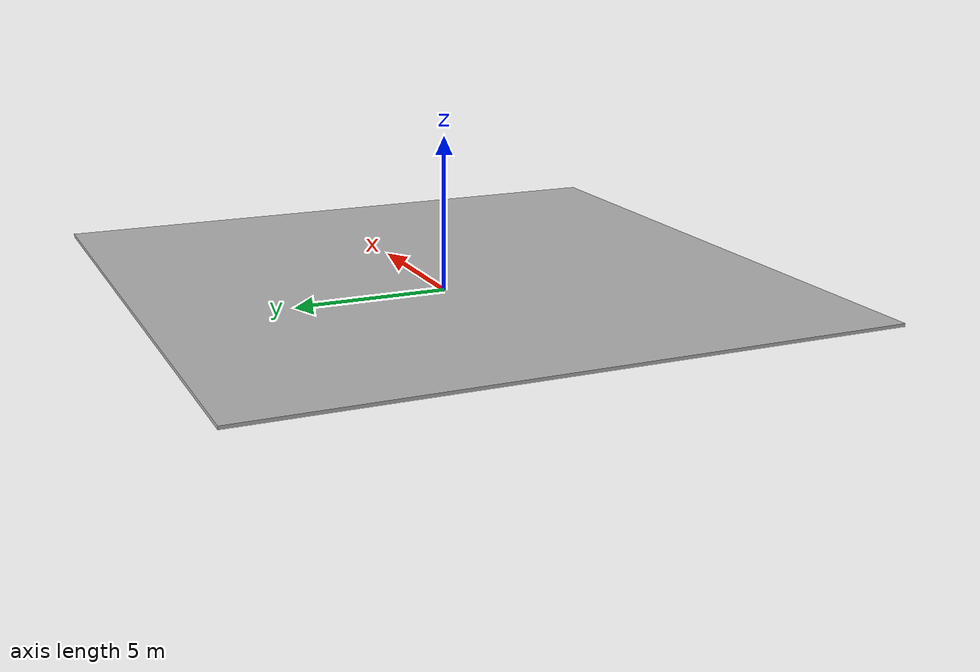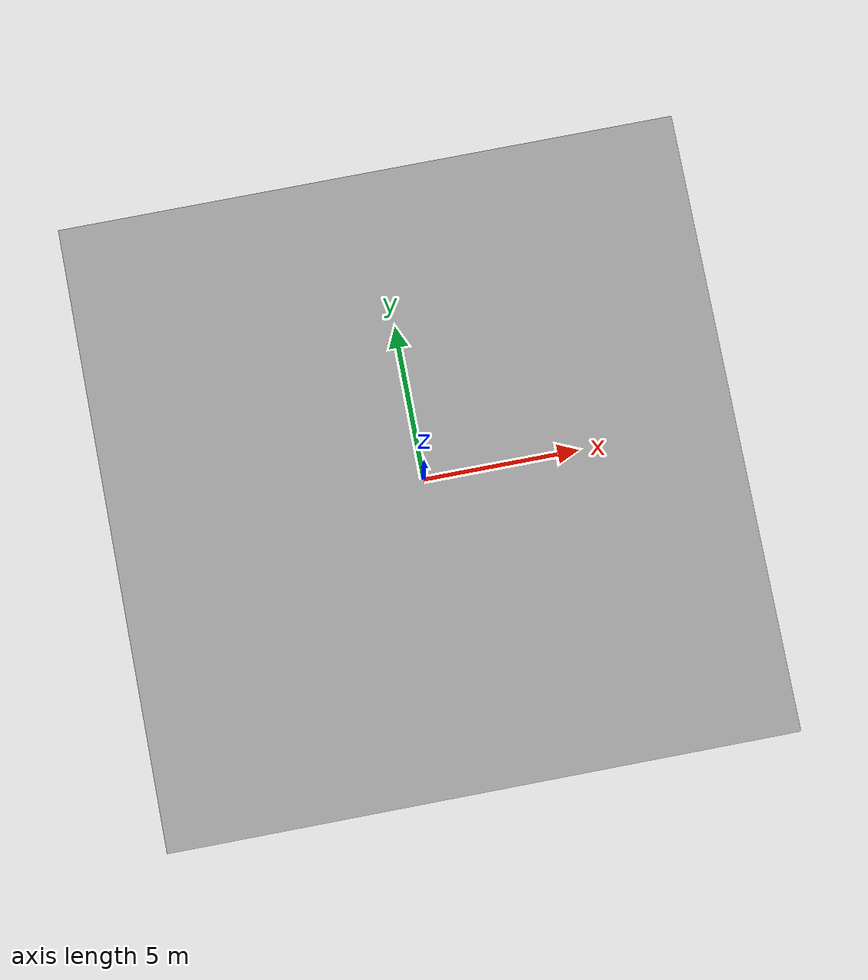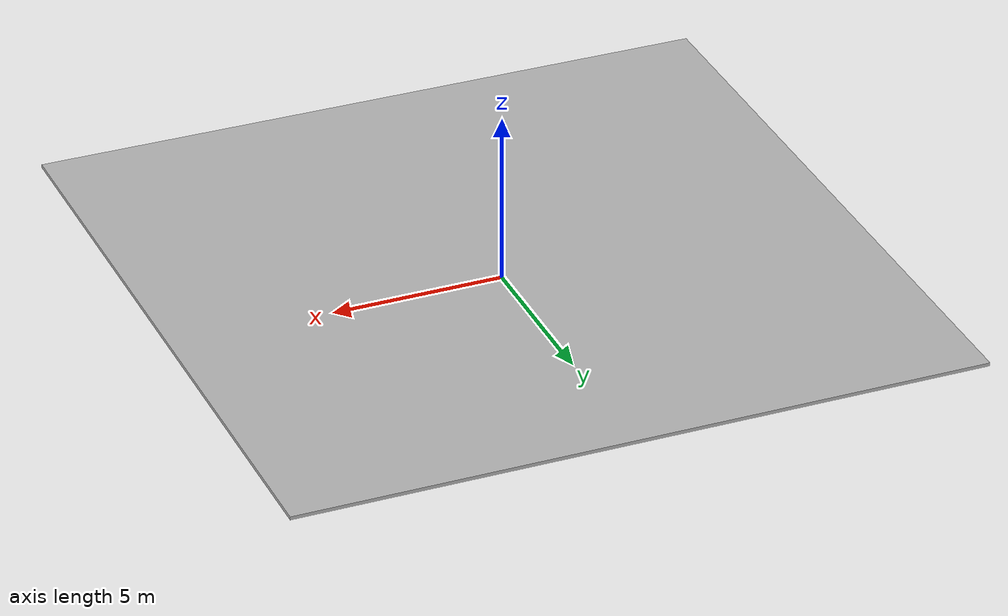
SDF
<?xml version="1.0"?>
<sdf version="1.3">
  <model name="platform_4">
    <pose>0 0 .5 0 0 0</pose>
    <static>true</static>
    <link name="link">
      <collision name="collision">
        <geometry>
          <box>
            <size>20 20 .1</size>
          </box>
        </geometry>
      </collision>

      <visual name="visual">
        <geometry>
          <mesh>
            <scale>1 0.66667 1</scale>
            <uri>model://platform_4/meshes/platform_4.dae</uri>
          </mesh>
        </geometry>
      </visual>
    </link>
  </model>
</sdf>
